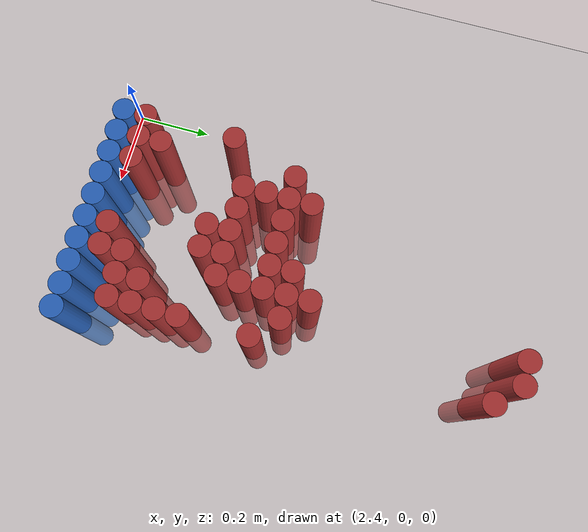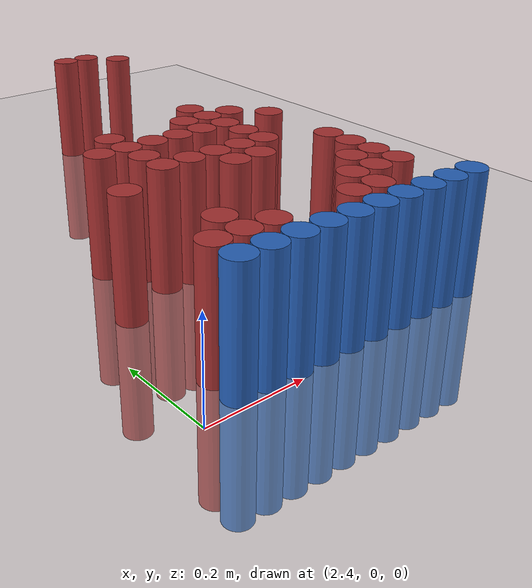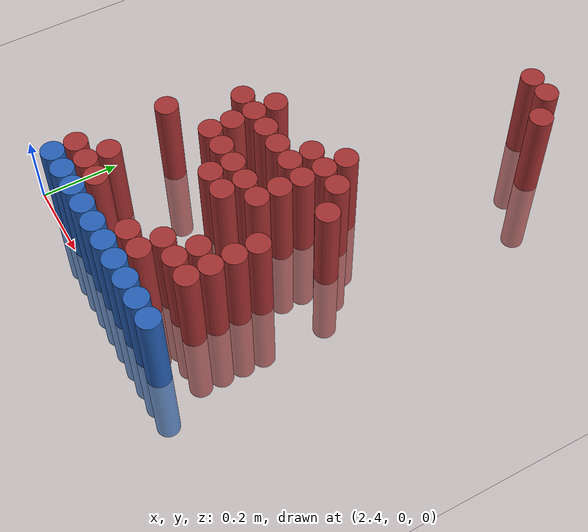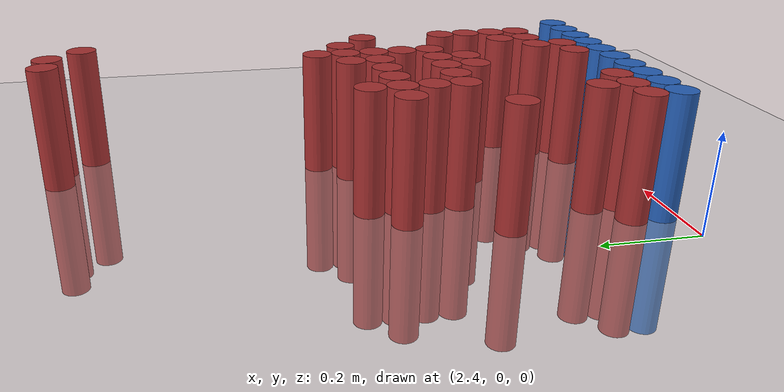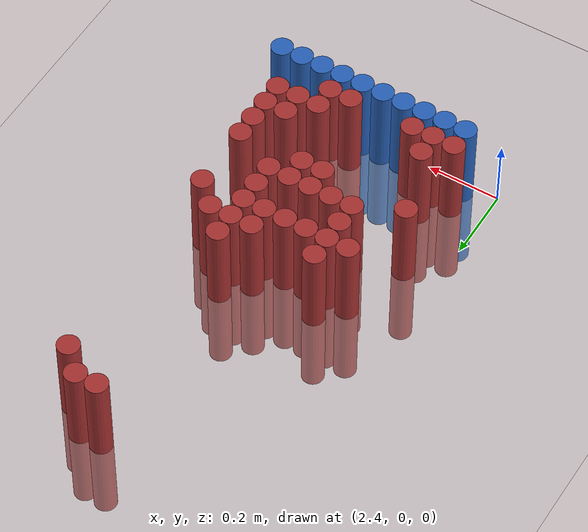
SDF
<sdf version="1.6">
 <world name="default">
  <model name="ground_plane">
   <static>1</static>
   <link name="link">
    <collision name="collision">
     <geometry><plane><normal>0 0 1</normal><size>100 100</size></plane></geometry>
     <surface><friction><ode><mu>100</mu><mu2>50</mu2></ode></friction></surface>
    </collision>
    <visual name="visual">
     <cast_shadows>0</cast_shadows>
     <geometry><plane><normal>0 0 1</normal><size>100 100</size></plane></geometry>
     <material>
      <script><uri>file://media/materials/scripts/gazebo.material</uri><name>Gazebo/Grey</name></script>
     </material>
    </visual>
   </link>
  </model>
  <model name="unit_cylinder_211">
   <static>1</static>
   <pose>2.850000 1.170000 0.000000 0.000000 0.000000 0.000000</pose>
   <link name="link">
    <inertial>
     <mass>1</mass>
     <inertia><ixx>0.145833</ixx><ixy>0</ixy><ixz>0</ixz><iyy>0.145833</iyy><iyz>0</iyz><izz>0.125</izz></inertia>
    </inertial>
    <collision name="collision">
     <geometry><cylinder><radius>0.030000</radius><length>0.5</length></cylinder></geometry>
    </collision>
    <visual name="visual">
     <geometry><cylinder><radius>0.030000</radius><length>0.5</length></cylinder></geometry>
     <material>
      <ambient>0.648000 0.192000 0.192000 1</ambient>
      <diffuse>0.648000 0.192000 0.192000 1</diffuse>
     </material>
     <material>
      <script><name>Gazebo/Grey</name><uri>file://media/materials/scripts/gazebo.material</uri></script>
     </material>
    </visual>
   </link>
  </model>
  <model name="unit_cylinder_212">
   <static>1</static>
   <pose>2.910000 1.170000 0.000000 0.000000 0.000000 0.000000</pose>
   <link name="link">
    <inertial>
     <mass>1</mass>
     <inertia><ixx>0.145833</ixx><ixy>0</ixy><ixz>0</ixz><iyy>0.145833</iyy><iyz>0</iyz><izz>0.125</izz></inertia>
    </inertial>
    <collision name="collision">
     <geometry><cylinder><radius>0.030000</radius><length>0.5</length></cylinder></geometry>
    </collision>
    <visual name="visual">
     <geometry><cylinder><radius>0.030000</radius><length>0.5</length></cylinder></geometry>
     <material>
      <ambient>0.648000 0.192000 0.192000 1</ambient>
      <diffuse>0.648000 0.192000 0.192000 1</diffuse>
     </material>
     <material>
      <script><name>Gazebo/Grey</name><uri>file://media/materials/scripts/gazebo.material</uri></script>
     </material>
    </visual>
   </link>
  </model>
  <model name="unit_cylinder_224">
   <static>1</static>
   <pose>2.970000 1.110000 0.000000 0.000000 0.000000 0.000000</pose>
   <link name="link">
    <inertial>
     <mass>1</mass>
     <inertia><ixx>0.145833</ixx><ixy>0</ixy><ixz>0</ixz><iyy>0.145833</iyy><iyz>0</iyz><izz>0.125</izz></inertia>
    </inertial>
    <collision name="collision">
     <geometry><cylinder><radius>0.030000</radius><length>0.5</length></cylinder></geometry>
    </collision>
    <visual name="visual">
     <geometry><cylinder><radius>0.030000</radius><length>0.5</length></cylinder></geometry>
     <material>
      <ambient>0.648000 0.192000 0.192000 1</ambient>
      <diffuse>0.648000 0.192000 0.192000 1</diffuse>
     </material>
     <material>
      <script><name>Gazebo/Grey</name><uri>file://media/materials/scripts/gazebo.material</uri></script>
     </material>
    </visual>
   </link>
  </model>
  <model name="unit_cylinder_230">
   <static>1</static>
   <pose>2.850000 0.630000 0.000000 0.000000 0.000000 0.000000</pose>
   <link name="link">
    <inertial>
     <mass>1</mass>
     <inertia><ixx>0.145833</ixx><ixy>0</ixy><ixz>0</ixz><iyy>0.145833</iyy><iyz>0</iyz><izz>0.125</izz></inertia>
    </inertial>
    <collision name="collision">
     <geometry><cylinder><radius>0.030000</radius><length>0.5</length></cylinder></geometry>
    </collision>
    <visual name="visual">
     <geometry><cylinder><radius>0.030000</radius><length>0.5</length></cylinder></geometry>
     <material>
      <ambient>0.648000 0.192000 0.192000 1</ambient>
      <diffuse>0.648000 0.192000 0.192000 1</diffuse>
     </material>
     <material>
      <script><name>Gazebo/Grey</name><uri>file://media/materials/scripts/gazebo.material</uri></script>
     </material>
    </visual>
   </link>
  </model>
  <model name="unit_cylinder_234">
   <static>1</static>
   <pose>2.610000 0.570000 0.000000 0.000000 0.000000 0.000000</pose>
   <link name="link">
    <inertial>
     <mass>1</mass>
     <inertia><ixx>0.145833</ixx><ixy>0</ixy><ixz>0</ixz><iyy>0.145833</iyy><iyz>0</iyz><izz>0.125</izz></inertia>
    </inertial>
    <collision name="collision">
     <geometry><cylinder><radius>0.030000</radius><length>0.5</length></cylinder></geometry>
    </collision>
    <visual name="visual">
     <geometry><cylinder><radius>0.030000</radius><length>0.5</length></cylinder></geometry>
     <material>
      <ambient>0.648000 0.192000 0.192000 1</ambient>
      <diffuse>0.648000 0.192000 0.192000 1</diffuse>
     </material>
     <material>
      <script><name>Gazebo/Grey</name><uri>file://media/materials/scripts/gazebo.material</uri></script>
     </material>
    </visual>
   </link>
  </model>
  <model name="unit_cylinder_235">
   <static>1</static>
   <pose>2.790000 0.570000 0.000000 0.000000 0.000000 0.000000</pose>
   <link name="link">
    <inertial>
     <mass>1</mass>
     <inertia><ixx>0.145833</ixx><ixy>0</ixy><ixz>0</ixz><iyy>0.145833</iyy><iyz>0</iyz><izz>0.125</izz></inertia>
    </inertial>
    <collision name="collision">
     <geometry><cylinder><radius>0.030000</radius><length>0.5</length></cylinder></geometry>
    </collision>
    <visual name="visual">
     <geometry><cylinder><radius>0.030000</radius><length>0.5</length></cylinder></geometry>
     <material>
      <ambient>0.648000 0.192000 0.192000 1</ambient>
      <diffuse>0.648000 0.192000 0.192000 1</diffuse>
     </material>
     <material>
      <script><name>Gazebo/Grey</name><uri>file://media/materials/scripts/gazebo.material</uri></script>
     </material>
    </visual>
   </link>
  </model>
  <model name="unit_cylinder_236">
   <static>1</static>
   <pose>2.850000 0.570000 0.000000 0.000000 0.000000 0.000000</pose>
   <link name="link">
    <inertial>
     <mass>1</mass>
     <inertia><ixx>0.145833</ixx><ixy>0</ixy><ixz>0</ixz><iyy>0.145833</iyy><iyz>0</iyz><izz>0.125</izz></inertia>
    </inertial>
    <collision name="collision">
     <geometry><cylinder><radius>0.030000</radius><length>0.5</length></cylinder></geometry>
    </collision>
    <visual name="visual">
     <geometry><cylinder><radius>0.030000</radius><length>0.5</length></cylinder></geometry>
     <material>
      <ambient>0.648000 0.192000 0.192000 1</ambient>
      <diffuse>0.648000 0.192000 0.192000 1</diffuse>
     </material>
     <material>
      <script><name>Gazebo/Grey</name><uri>file://media/materials/scripts/gazebo.material</uri></script>
     </material>
    </visual>
   </link>
  </model>
  <model name="unit_cylinder_237">
   <static>1</static>
   <pose>2.910000 0.570000 0.000000 0.000000 0.000000 0.000000</pose>
   <link name="link">
    <inertial>
     <mass>1</mass>
     <inertia><ixx>0.145833</ixx><ixy>0</ixy><ixz>0</ixz><iyy>0.145833</iyy><iyz>0</iyz><izz>0.125</izz></inertia>
    </inertial>
    <collision name="collision">
     <geometry><cylinder><radius>0.030000</radius><length>0.5</length></cylinder></geometry>
    </collision>
    <visual name="visual">
     <geometry><cylinder><radius>0.030000</radius><length>0.5</length></cylinder></geometry>
     <material>
      <ambient>0.648000 0.192000 0.192000 1</ambient>
      <diffuse>0.648000 0.192000 0.192000 1</diffuse>
     </material>
     <material>
      <script><name>Gazebo/Grey</name><uri>file://media/materials/scripts/gazebo.material</uri></script>
     </material>
    </visual>
   </link>
  </model>
  <model name="unit_cylinder_242">
   <static>1</static>
   <pose>2.550000 0.510000 0.000000 0.000000 0.000000 0.000000</pose>
   <link name="link">
    <inertial>
     <mass>1</mass>
     <inertia><ixx>0.145833</ixx><ixy>0</ixy><ixz>0</ixz><iyy>0.145833</iyy><iyz>0</iyz><izz>0.125</izz></inertia>
    </inertial>
    <collision name="collision">
     <geometry><cylinder><radius>0.030000</radius><length>0.5</length></cylinder></geometry>
    </collision>
    <visual name="visual">
     <geometry><cylinder><radius>0.030000</radius><length>0.5</length></cylinder></geometry>
     <material>
      <ambient>0.648000 0.192000 0.192000 1</ambient>
      <diffuse>0.648000 0.192000 0.192000 1</diffuse>
     </material>
     <material>
      <script><name>Gazebo/Grey</name><uri>file://media/materials/scripts/gazebo.material</uri></script>
     </material>
    </visual>
   </link>
  </model>
  <model name="unit_cylinder_243">
   <static>1</static>
   <pose>2.610000 0.510000 0.000000 0.000000 0.000000 0.000000</pose>
   <link name="link">
    <inertial>
     <mass>1</mass>
     <inertia><ixx>0.145833</ixx><ixy>0</ixy><ixz>0</ixz><iyy>0.145833</iyy><iyz>0</iyz><izz>0.125</izz></inertia>
    </inertial>
    <collision name="collision">
     <geometry><cylinder><radius>0.030000</radius><length>0.5</length></cylinder></geometry>
    </collision>
    <visual name="visual">
     <geometry><cylinder><radius>0.030000</radius><length>0.5</length></cylinder></geometry>
     <material>
      <ambient>0.648000 0.192000 0.192000 1</ambient>
      <diffuse>0.648000 0.192000 0.192000 1</diffuse>
     </material>
     <material>
      <script><name>Gazebo/Grey</name><uri>file://media/materials/scripts/gazebo.material</uri></script>
     </material>
    </visual>
   </link>
  </model>
  <model name="unit_cylinder_244">
   <static>1</static>
   <pose>2.670000 0.510000 0.000000 0.000000 0.000000 0.000000</pose>
   <link name="link">
    <inertial>
     <mass>1</mass>
     <inertia><ixx>0.145833</ixx><ixy>0</ixy><ixz>0</ixz><iyy>0.145833</iyy><iyz>0</iyz><izz>0.125</izz></inertia>
    </inertial>
    <collision name="collision">
     <geometry><cylinder><radius>0.030000</radius><length>0.5</length></cylinder></geometry>
    </collision>
    <visual name="visual">
     <geometry><cylinder><radius>0.030000</radius><length>0.5</length></cylinder></geometry>
     <material>
      <ambient>0.648000 0.192000 0.192000 1</ambient>
      <diffuse>0.648000 0.192000 0.192000 1</diffuse>
     </material>
     <material>
      <script><name>Gazebo/Grey</name><uri>file://media/materials/scripts/gazebo.material</uri></script>
     </material>
    </visual>
   </link>
  </model>
  <model name="unit_cylinder_245">
   <static>1</static>
   <pose>2.730000 0.510000 0.000000 0.000000 0.000000 0.000000</pose>
   <link name="link">
    <inertial>
     <mass>1</mass>
     <inertia><ixx>0.145833</ixx><ixy>0</ixy><ixz>0</ixz><iyy>0.145833</iyy><iyz>0</iyz><izz>0.125</izz></inertia>
    </inertial>
    <collision name="collision">
     <geometry><cylinder><radius>0.030000</radius><length>0.5</length></cylinder></geometry>
    </collision>
    <visual name="visual">
     <geometry><cylinder><radius>0.030000</radius><length>0.5</length></cylinder></geometry>
     <material>
      <ambient>0.648000 0.192000 0.192000 1</ambient>
      <diffuse>0.648000 0.192000 0.192000 1</diffuse>
     </material>
     <material>
      <script><name>Gazebo/Grey</name><uri>file://media/materials/scripts/gazebo.material</uri></script>
     </material>
    </visual>
   </link>
  </model>
  <model name="unit_cylinder_246">
   <static>1</static>
   <pose>2.790000 0.510000 0.000000 0.000000 0.000000 0.000000</pose>
   <link name="link">
    <inertial>
     <mass>1</mass>
     <inertia><ixx>0.145833</ixx><ixy>0</ixy><ixz>0</ixz><iyy>0.145833</iyy><iyz>0</iyz><izz>0.125</izz></inertia>
    </inertial>
    <collision name="collision">
     <geometry><cylinder><radius>0.030000</radius><length>0.5</length></cylinder></geometry>
    </collision>
    <visual name="visual">
     <geometry><cylinder><radius>0.030000</radius><length>0.5</length></cylinder></geometry>
     <material>
      <ambient>0.648000 0.192000 0.192000 1</ambient>
      <diffuse>0.648000 0.192000 0.192000 1</diffuse>
     </material>
     <material>
      <script><name>Gazebo/Grey</name><uri>file://media/materials/scripts/gazebo.material</uri></script>
     </material>
    </visual>
   </link>
  </model>
  <model name="unit_cylinder_247">
   <static>1</static>
   <pose>2.850000 0.510000 0.000000 0.000000 0.000000 0.000000</pose>
   <link name="link">
    <inertial>
     <mass>1</mass>
     <inertia><ixx>0.145833</ixx><ixy>0</ixy><ixz>0</ixz><iyy>0.145833</iyy><iyz>0</iyz><izz>0.125</izz></inertia>
    </inertial>
    <collision name="collision">
     <geometry><cylinder><radius>0.030000</radius><length>0.5</length></cylinder></geometry>
    </collision>
    <visual name="visual">
     <geometry><cylinder><radius>0.030000</radius><length>0.5</length></cylinder></geometry>
     <material>
      <ambient>0.648000 0.192000 0.192000 1</ambient>
      <diffuse>0.648000 0.192000 0.192000 1</diffuse>
     </material>
     <material>
      <script><name>Gazebo/Grey</name><uri>file://media/materials/scripts/gazebo.material</uri></script>
     </material>
    </visual>
   </link>
  </model>
  <model name="unit_cylinder_248">
   <static>1</static>
   <pose>2.970000 0.510000 0.000000 0.000000 0.000000 0.000000</pose>
   <link name="link">
    <inertial>
     <mass>1</mass>
     <inertia><ixx>0.145833</ixx><ixy>0</ixy><ixz>0</ixz><iyy>0.145833</iyy><iyz>0</iyz><izz>0.125</izz></inertia>
    </inertial>
    <collision name="collision">
     <geometry><cylinder><radius>0.030000</radius><length>0.5</length></cylinder></geometry>
    </collision>
    <visual name="visual">
     <geometry><cylinder><radius>0.030000</radius><length>0.5</length></cylinder></geometry>
     <material>
      <ambient>0.648000 0.192000 0.192000 1</ambient>
      <diffuse>0.648000 0.192000 0.192000 1</diffuse>
     </material>
     <material>
      <script><name>Gazebo/Grey</name><uri>file://media/materials/scripts/gazebo.material</uri></script>
     </material>
    </visual>
   </link>
  </model>
  <model name="unit_cylinder_251">
   <static>1</static>
   <pose>2.610000 0.450000 0.000000 0.000000 0.000000 0.000000</pose>
   <link name="link">
    <inertial>
     <mass>1</mass>
     <inertia><ixx>0.145833</ixx><ixy>0</ixy><ixz>0</ixz><iyy>0.145833</iyy><iyz>0</iyz><izz>0.125</izz></inertia>
    </inertial>
    <collision name="collision">
     <geometry><cylinder><radius>0.030000</radius><length>0.5</length></cylinder></geometry>
    </collision>
    <visual name="visual">
     <geometry><cylinder><radius>0.030000</radius><length>0.5</length></cylinder></geometry>
     <material>
      <ambient>0.648000 0.192000 0.192000 1</ambient>
      <diffuse>0.648000 0.192000 0.192000 1</diffuse>
     </material>
     <material>
      <script><name>Gazebo/Grey</name><uri>file://media/materials/scripts/gazebo.material</uri></script>
     </material>
    </visual>
   </link>
  </model>
  <model name="unit_cylinder_252">
   <static>1</static>
   <pose>2.850000 0.450000 0.000000 0.000000 0.000000 0.000000</pose>
   <link name="link">
    <inertial>
     <mass>1</mass>
     <inertia><ixx>0.145833</ixx><ixy>0</ixy><ixz>0</ixz><iyy>0.145833</iyy><iyz>0</iyz><izz>0.125</izz></inertia>
    </inertial>
    <collision name="collision">
     <geometry><cylinder><radius>0.030000</radius><length>0.5</length></cylinder></geometry>
    </collision>
    <visual name="visual">
     <geometry><cylinder><radius>0.030000</radius><length>0.5</length></cylinder></geometry>
     <material>
      <ambient>0.648000 0.192000 0.192000 1</ambient>
      <diffuse>0.648000 0.192000 0.192000 1</diffuse>
     </material>
     <material>
      <script><name>Gazebo/Grey</name><uri>file://media/materials/scripts/gazebo.material</uri></script>
     </material>
    </visual>
   </link>
  </model>
  <model name="unit_cylinder_255">
   <static>1</static>
   <pose>2.610000 0.390000 0.000000 0.000000 0.000000 0.000000</pose>
   <link name="link">
    <inertial>
     <mass>1</mass>
     <inertia><ixx>0.145833</ixx><ixy>0</ixy><ixz>0</ixz><iyy>0.145833</iyy><iyz>0</iyz><izz>0.125</izz></inertia>
    </inertial>
    <collision name="collision">
     <geometry><cylinder><radius>0.030000</radius><length>0.5</length></cylinder></geometry>
    </collision>
    <visual name="visual">
     <geometry><cylinder><radius>0.030000</radius><length>0.5</length></cylinder></geometry>
     <material>
      <ambient>0.648000 0.192000 0.192000 1</ambient>
      <diffuse>0.648000 0.192000 0.192000 1</diffuse>
     </material>
     <material>
      <script><name>Gazebo/Grey</name><uri>file://media/materials/scripts/gazebo.material</uri></script>
     </material>
    </visual>
   </link>
  </model>
  <model name="unit_cylinder_256">
   <static>1</static>
   <pose>2.670000 0.390000 0.000000 0.000000 0.000000 0.000000</pose>
   <link name="link">
    <inertial>
     <mass>1</mass>
     <inertia><ixx>0.145833</ixx><ixy>0</ixy><ixz>0</ixz><iyy>0.145833</iyy><iyz>0</iyz><izz>0.125</izz></inertia>
    </inertial>
    <collision name="collision">
     <geometry><cylinder><radius>0.030000</radius><length>0.5</length></cylinder></geometry>
    </collision>
    <visual name="visual">
     <geometry><cylinder><radius>0.030000</radius><length>0.5</length></cylinder></geometry>
     <material>
      <ambient>0.648000 0.192000 0.192000 1</ambient>
      <diffuse>0.648000 0.192000 0.192000 1</diffuse>
     </material>
     <material>
      <script><name>Gazebo/Grey</name><uri>file://media/materials/scripts/gazebo.material</uri></script>
     </material>
    </visual>
   </link>
  </model>
  <model name="unit_cylinder_257">
   <static>1</static>
   <pose>2.730000 0.390000 0.000000 0.000000 0.000000 0.000000</pose>
   <link name="link">
    <inertial>
     <mass>1</mass>
     <inertia><ixx>0.145833</ixx><ixy>0</ixy><ixz>0</ixz><iyy>0.145833</iyy><iyz>0</iyz><izz>0.125</izz></inertia>
    </inertial>
    <collision name="collision">
     <geometry><cylinder><radius>0.030000</radius><length>0.5</length></cylinder></geometry>
    </collision>
    <visual name="visual">
     <geometry><cylinder><radius>0.030000</radius><length>0.5</length></cylinder></geometry>
     <material>
      <ambient>0.648000 0.192000 0.192000 1</ambient>
      <diffuse>0.648000 0.192000 0.192000 1</diffuse>
     </material>
     <material>
      <script><name>Gazebo/Grey</name><uri>file://media/materials/scripts/gazebo.material</uri></script>
     </material>
    </visual>
   </link>
  </model>
  <model name="unit_cylinder_258">
   <static>1</static>
   <pose>2.790000 0.390000 0.000000 0.000000 0.000000 0.000000</pose>
   <link name="link">
    <inertial>
     <mass>1</mass>
     <inertia><ixx>0.145833</ixx><ixy>0</ixy><ixz>0</ixz><iyy>0.145833</iyy><iyz>0</iyz><izz>0.125</izz></inertia>
    </inertial>
    <collision name="collision">
     <geometry><cylinder><radius>0.030000</radius><length>0.5</length></cylinder></geometry>
    </collision>
    <visual name="visual">
     <geometry><cylinder><radius>0.030000</radius><length>0.5</length></cylinder></geometry>
     <material>
      <ambient>0.648000 0.192000 0.192000 1</ambient>
      <diffuse>0.648000 0.192000 0.192000 1</diffuse>
     </material>
     <material>
      <script><name>Gazebo/Grey</name><uri>file://media/materials/scripts/gazebo.material</uri></script>
     </material>
    </visual>
   </link>
  </model>
  <model name="unit_cylinder_259">
   <static>1</static>
   <pose>2.850000 0.390000 0.000000 0.000000 0.000000 0.000000</pose>
   <link name="link">
    <inertial>
     <mass>1</mass>
     <inertia><ixx>0.145833</ixx><ixy>0</ixy><ixz>0</ixz><iyy>0.145833</iyy><iyz>0</iyz><izz>0.125</izz></inertia>
    </inertial>
    <collision name="collision">
     <geometry><cylinder><radius>0.030000</radius><length>0.5</length></cylinder></geometry>
    </collision>
    <visual name="visual">
     <geometry><cylinder><radius>0.030000</radius><length>0.5</length></cylinder></geometry>
     <material>
      <ambient>0.648000 0.192000 0.192000 1</ambient>
      <diffuse>0.648000 0.192000 0.192000 1</diffuse>
     </material>
     <material>
      <script><name>Gazebo/Grey</name><uri>file://media/materials/scripts/gazebo.material</uri></script>
     </material>
    </visual>
   </link>
  </model>
  <model name="unit_cylinder_265">
   <static>1</static>
   <pose>2.490000 0.330000 0.000000 0.000000 0.000000 0.000000</pose>
   <link name="link">
    <inertial>
     <mass>1</mass>
     <inertia><ixx>0.145833</ixx><ixy>0</ixy><ixz>0</ixz><iyy>0.145833</iyy><iyz>0</iyz><izz>0.125</izz></inertia>
    </inertial>
    <collision name="collision">
     <geometry><cylinder><radius>0.030000</radius><length>0.5</length></cylinder></geometry>
    </collision>
    <visual name="visual">
     <geometry><cylinder><radius>0.030000</radius><length>0.5</length></cylinder></geometry>
     <material>
      <ambient>0.648000 0.192000 0.192000 1</ambient>
      <diffuse>0.648000 0.192000 0.192000 1</diffuse>
     </material>
     <material>
      <script><name>Gazebo/Grey</name><uri>file://media/materials/scripts/gazebo.material</uri></script>
     </material>
    </visual>
   </link>
  </model>
  <model name="unit_cylinder_266">
   <static>1</static>
   <pose>2.730000 0.330000 0.000000 0.000000 0.000000 0.000000</pose>
   <link name="link">
    <inertial>
     <mass>1</mass>
     <inertia><ixx>0.145833</ixx><ixy>0</ixy><ixz>0</ixz><iyy>0.145833</iyy><iyz>0</iyz><izz>0.125</izz></inertia>
    </inertial>
    <collision name="collision">
     <geometry><cylinder><radius>0.030000</radius><length>0.5</length></cylinder></geometry>
    </collision>
    <visual name="visual">
     <geometry><cylinder><radius>0.030000</radius><length>0.5</length></cylinder></geometry>
     <material>
      <ambient>0.648000 0.192000 0.192000 1</ambient>
      <diffuse>0.648000 0.192000 0.192000 1</diffuse>
     </material>
     <material>
      <script><name>Gazebo/Grey</name><uri>file://media/materials/scripts/gazebo.material</uri></script>
     </material>
    </visual>
   </link>
  </model>
  <model name="unit_cylinder_267">
   <static>1</static>
   <pose>2.790000 0.330000 0.000000 0.000000 0.000000 0.000000</pose>
   <link name="link">
    <inertial>
     <mass>1</mass>
     <inertia><ixx>0.145833</ixx><ixy>0</ixy><ixz>0</ixz><iyy>0.145833</iyy><iyz>0</iyz><izz>0.125</izz></inertia>
    </inertial>
    <collision name="collision">
     <geometry><cylinder><radius>0.030000</radius><length>0.5</length></cylinder></geometry>
    </collision>
    <visual name="visual">
     <geometry><cylinder><radius>0.030000</radius><length>0.5</length></cylinder></geometry>
     <material>
      <ambient>0.648000 0.192000 0.192000 1</ambient>
      <diffuse>0.648000 0.192000 0.192000 1</diffuse>
     </material>
     <material>
      <script><name>Gazebo/Grey</name><uri>file://media/materials/scripts/gazebo.material</uri></script>
     </material>
    </visual>
   </link>
  </model>
  <model name="unit_cylinder_268">
   <static>1</static>
   <pose>2.970000 0.330000 0.000000 0.000000 0.000000 0.000000</pose>
   <link name="link">
    <inertial>
     <mass>1</mass>
     <inertia><ixx>0.145833</ixx><ixy>0</ixy><ixz>0</ixz><iyy>0.145833</iyy><iyz>0</iyz><izz>0.125</izz></inertia>
    </inertial>
    <collision name="collision">
     <geometry><cylinder><radius>0.030000</radius><length>0.5</length></cylinder></geometry>
    </collision>
    <visual name="visual">
     <geometry><cylinder><radius>0.030000</radius><length>0.5</length></cylinder></geometry>
     <material>
      <ambient>0.648000 0.192000 0.192000 1</ambient>
      <diffuse>0.648000 0.192000 0.192000 1</diffuse>
     </material>
     <material>
      <script><name>Gazebo/Grey</name><uri>file://media/materials/scripts/gazebo.material</uri></script>
     </material>
    </visual>
   </link>
  </model>
  <model name="unit_cylinder_274">
   <static>1</static>
   <pose>2.970000 0.270000 0.000000 0.000000 0.000000 0.000000</pose>
   <link name="link">
    <inertial>
     <mass>1</mass>
     <inertia><ixx>0.145833</ixx><ixy>0</ixy><ixz>0</ixz><iyy>0.145833</iyy><iyz>0</iyz><izz>0.125</izz></inertia>
    </inertial>
    <collision name="collision">
     <geometry><cylinder><radius>0.030000</radius><length>0.5</length></cylinder></geometry>
    </collision>
    <visual name="visual">
     <geometry><cylinder><radius>0.030000</radius><length>0.5</length></cylinder></geometry>
     <material>
      <ambient>0.648000 0.192000 0.192000 1</ambient>
      <diffuse>0.648000 0.192000 0.192000 1</diffuse>
     </material>
     <material>
      <script><name>Gazebo/Grey</name><uri>file://media/materials/scripts/gazebo.material</uri></script>
     </material>
    </visual>
   </link>
  </model>
  <model name="unit_cylinder_277">
   <static>1</static>
   <pose>2.910000 0.210000 0.000000 0.000000 0.000000 0.000000</pose>
   <link name="link">
    <inertial>
     <mass>1</mass>
     <inertia><ixx>0.145833</ixx><ixy>0</ixy><ixz>0</ixz><iyy>0.145833</iyy><iyz>0</iyz><izz>0.125</izz></inertia>
    </inertial>
    <collision name="collision">
     <geometry><cylinder><radius>0.030000</radius><length>0.5</length></cylinder></geometry>
    </collision>
    <visual name="visual">
     <geometry><cylinder><radius>0.030000</radius><length>0.5</length></cylinder></geometry>
     <material>
      <ambient>0.648000 0.192000 0.192000 1</ambient>
      <diffuse>0.648000 0.192000 0.192000 1</diffuse>
     </material>
     <material>
      <script><name>Gazebo/Grey</name><uri>file://media/materials/scripts/gazebo.material</uri></script>
     </material>
    </visual>
   </link>
  </model>
  <model name="unit_cylinder_278">
   <static>1</static>
   <pose>2.970000 0.210000 0.000000 0.000000 0.000000 0.000000</pose>
   <link name="link">
    <inertial>
     <mass>1</mass>
     <inertia><ixx>0.145833</ixx><ixy>0</ixy><ixz>0</ixz><iyy>0.145833</iyy><iyz>0</iyz><izz>0.125</izz></inertia>
    </inertial>
    <collision name="collision">
     <geometry><cylinder><radius>0.030000</radius><length>0.5</length></cylinder></geometry>
    </collision>
    <visual name="visual">
     <geometry><cylinder><radius>0.030000</radius><length>0.5</length></cylinder></geometry>
     <material>
      <ambient>0.648000 0.192000 0.192000 1</ambient>
      <diffuse>0.648000 0.192000 0.192000 1</diffuse>
     </material>
     <material>
      <script><name>Gazebo/Grey</name><uri>file://media/materials/scripts/gazebo.material</uri></script>
     </material>
    </visual>
   </link>
  </model>
  <model name="unit_cylinder_280">
   <static>1</static>
   <pose>2.550000 0.150000 0.000000 0.000000 0.000000 0.000000</pose>
   <link name="link">
    <inertial>
     <mass>1</mass>
     <inertia><ixx>0.145833</ixx><ixy>0</ixy><ixz>0</ixz><iyy>0.145833</iyy><iyz>0</iyz><izz>0.125</izz></inertia>
    </inertial>
    <collision name="collision">
     <geometry><cylinder><radius>0.030000</radius><length>0.5</length></cylinder></geometry>
    </collision>
    <visual name="visual">
     <geometry><cylinder><radius>0.030000</radius><length>0.5</length></cylinder></geometry>
     <material>
      <ambient>0.648000 0.192000 0.192000 1</ambient>
      <diffuse>0.648000 0.192000 0.192000 1</diffuse>
     </material>
     <material>
      <script><name>Gazebo/Grey</name><uri>file://media/materials/scripts/gazebo.material</uri></script>
     </material>
    </visual>
   </link>
  </model>
  <model name="unit_cylinder_281">
   <static>1</static>
   <pose>2.850000 0.150000 0.000000 0.000000 0.000000 0.000000</pose>
   <link name="link">
    <inertial>
     <mass>1</mass>
     <inertia><ixx>0.145833</ixx><ixy>0</ixy><ixz>0</ixz><iyy>0.145833</iyy><iyz>0</iyz><izz>0.125</izz></inertia>
    </inertial>
    <collision name="collision">
     <geometry><cylinder><radius>0.030000</radius><length>0.5</length></cylinder></geometry>
    </collision>
    <visual name="visual">
     <geometry><cylinder><radius>0.030000</radius><length>0.5</length></cylinder></geometry>
     <material>
      <ambient>0.648000 0.192000 0.192000 1</ambient>
      <diffuse>0.648000 0.192000 0.192000 1</diffuse>
     </material>
     <material>
      <script><name>Gazebo/Grey</name><uri>file://media/materials/scripts/gazebo.material</uri></script>
     </material>
    </visual>
   </link>
  </model>
  <model name="unit_cylinder_282">
   <static>1</static>
   <pose>2.910000 0.150000 0.000000 0.000000 0.000000 0.000000</pose>
   <link name="link">
    <inertial>
     <mass>1</mass>
     <inertia><ixx>0.145833</ixx><ixy>0</ixy><ixz>0</ixz><iyy>0.145833</iyy><iyz>0</iyz><izz>0.125</izz></inertia>
    </inertial>
    <collision name="collision">
     <geometry><cylinder><radius>0.030000</radius><length>0.5</length></cylinder></geometry>
    </collision>
    <visual name="visual">
     <geometry><cylinder><radius>0.030000</radius><length>0.5</length></cylinder></geometry>
     <material>
      <ambient>0.648000 0.192000 0.192000 1</ambient>
      <diffuse>0.648000 0.192000 0.192000 1</diffuse>
     </material>
     <material>
      <script><name>Gazebo/Grey</name><uri>file://media/materials/scripts/gazebo.material</uri></script>
     </material>
    </visual>
   </link>
  </model>
  <model name="unit_cylinder_283">
   <static>1</static>
   <pose>2.970000 0.150000 0.000000 0.000000 0.000000 0.000000</pose>
   <link name="link">
    <inertial>
     <mass>1</mass>
     <inertia><ixx>0.145833</ixx><ixy>0</ixy><ixz>0</ixz><iyy>0.145833</iyy><iyz>0</iyz><izz>0.125</izz></inertia>
    </inertial>
    <collision name="collision">
     <geometry><cylinder><radius>0.030000</radius><length>0.5</length></cylinder></geometry>
    </collision>
    <visual name="visual">
     <geometry><cylinder><radius>0.030000</radius><length>0.5</length></cylinder></geometry>
     <material>
      <ambient>0.648000 0.192000 0.192000 1</ambient>
      <diffuse>0.648000 0.192000 0.192000 1</diffuse>
     </material>
     <material>
      <script><name>Gazebo/Grey</name><uri>file://media/materials/scripts/gazebo.material</uri></script>
     </material>
    </visual>
   </link>
  </model>
  <model name="unit_cylinder_291">
   <static>1</static>
   <pose>2.490000 0.090000 0.000000 0.000000 0.000000 0.000000</pose>
   <link name="link">
    <inertial>
     <mass>1</mass>
     <inertia><ixx>0.145833</ixx><ixy>0</ixy><ixz>0</ixz><iyy>0.145833</iyy><iyz>0</iyz><izz>0.125</izz></inertia>
    </inertial>
    <collision name="collision">
     <geometry><cylinder><radius>0.030000</radius><length>0.5</length></cylinder></geometry>
    </collision>
    <visual name="visual">
     <geometry><cylinder><radius>0.030000</radius><length>0.5</length></cylinder></geometry>
     <material>
      <ambient>0.648000 0.192000 0.192000 1</ambient>
      <diffuse>0.648000 0.192000 0.192000 1</diffuse>
     </material>
     <material>
      <script><name>Gazebo/Grey</name><uri>file://media/materials/scripts/gazebo.material</uri></script>
     </material>
    </visual>
   </link>
  </model>
  <model name="unit_cylinder_292">
   <static>1</static>
   <pose>2.550000 0.090000 0.000000 0.000000 0.000000 0.000000</pose>
   <link name="link">
    <inertial>
     <mass>1</mass>
     <inertia><ixx>0.145833</ixx><ixy>0</ixy><ixz>0</ixz><iyy>0.145833</iyy><iyz>0</iyz><izz>0.125</izz></inertia>
    </inertial>
    <collision name="collision">
     <geometry><cylinder><radius>0.030000</radius><length>0.5</length></cylinder></geometry>
    </collision>
    <visual name="visual">
     <geometry><cylinder><radius>0.030000</radius><length>0.5</length></cylinder></geometry>
     <material>
      <ambient>0.648000 0.192000 0.192000 1</ambient>
      <diffuse>0.648000 0.192000 0.192000 1</diffuse>
     </material>
     <material>
      <script><name>Gazebo/Grey</name><uri>file://media/materials/scripts/gazebo.material</uri></script>
     </material>
    </visual>
   </link>
  </model>
  <model name="unit_cylinder_293">
   <static>1</static>
   <pose>2.610000 0.090000 0.000000 0.000000 0.000000 0.000000</pose>
   <link name="link">
    <inertial>
     <mass>1</mass>
     <inertia><ixx>0.145833</ixx><ixy>0</ixy><ixz>0</ixz><iyy>0.145833</iyy><iyz>0</iyz><izz>0.125</izz></inertia>
    </inertial>
    <collision name="collision">
     <geometry><cylinder><radius>0.030000</radius><length>0.5</length></cylinder></geometry>
    </collision>
    <visual name="visual">
     <geometry><cylinder><radius>0.030000</radius><length>0.5</length></cylinder></geometry>
     <material>
      <ambient>0.648000 0.192000 0.192000 1</ambient>
      <diffuse>0.648000 0.192000 0.192000 1</diffuse>
     </material>
     <material>
      <script><name>Gazebo/Grey</name><uri>file://media/materials/scripts/gazebo.material</uri></script>
     </material>
    </visual>
   </link>
  </model>
  <model name="unit_cylinder_294">
   <static>1</static>
   <pose>2.790000 0.090000 0.000000 0.000000 0.000000 0.000000</pose>
   <link name="link">
    <inertial>
     <mass>1</mass>
     <inertia><ixx>0.145833</ixx><ixy>0</ixy><ixz>0</ixz><iyy>0.145833</iyy><iyz>0</iyz><izz>0.125</izz></inertia>
    </inertial>
    <collision name="collision">
     <geometry><cylinder><radius>0.030000</radius><length>0.5</length></cylinder></geometry>
    </collision>
    <visual name="visual">
     <geometry><cylinder><radius>0.030000</radius><length>0.5</length></cylinder></geometry>
     <material>
      <ambient>0.648000 0.192000 0.192000 1</ambient>
      <diffuse>0.648000 0.192000 0.192000 1</diffuse>
     </material>
     <material>
      <script><name>Gazebo/Grey</name><uri>file://media/materials/scripts/gazebo.material</uri></script>
     </material>
    </visual>
   </link>
  </model>
  <model name="unit_cylinder_295">
   <static>1</static>
   <pose>2.850000 0.090000 0.000000 0.000000 0.000000 0.000000</pose>
   <link name="link">
    <inertial>
     <mass>1</mass>
     <inertia><ixx>0.145833</ixx><ixy>0</ixy><ixz>0</ixz><iyy>0.145833</iyy><iyz>0</iyz><izz>0.125</izz></inertia>
    </inertial>
    <collision name="collision">
     <geometry><cylinder><radius>0.030000</radius><length>0.5</length></cylinder></geometry>
    </collision>
    <visual name="visual">
     <geometry><cylinder><radius>0.030000</radius><length>0.5</length></cylinder></geometry>
     <material>
      <ambient>0.648000 0.192000 0.192000 1</ambient>
      <diffuse>0.648000 0.192000 0.192000 1</diffuse>
     </material>
     <material>
      <script><name>Gazebo/Grey</name><uri>file://media/materials/scripts/gazebo.material</uri></script>
     </material>
    </visual>
   </link>
  </model>
  <model name="unit_cylinder_314">
   <static>1</static>
   <pose>2.490000 0.030000 0.000000 0.000000 0.000000 0.000000</pose>
   <link name="link">
    <inertial>
     <mass>1</mass>
     <inertia><ixx>0.145833</ixx><ixy>0</ixy><ixz>0</ixz><iyy>0.145833</iyy><iyz>0</iyz><izz>0.125</izz></inertia>
    </inertial>
    <collision name="collision">
     <geometry><cylinder><radius>0.030000</radius><length>0.5</length></cylinder></geometry>
    </collision>
    <visual name="visual">
     <geometry><cylinder><radius>0.030000</radius><length>0.5</length></cylinder></geometry>
     <material>
      <ambient>0.152000 0.379000 0.720000 1</ambient>
      <diffuse>0.152000 0.379000 0.720000 1</diffuse>
     </material>
     <material>
      <script><name>Gazebo/Grey</name><uri>file://media/materials/scripts/gazebo.material</uri></script>
     </material>
    </visual>
   </link>
  </model>
  <model name="unit_cylinder_315">
   <static>1</static>
   <pose>2.550000 0.030000 0.000000 0.000000 0.000000 0.000000</pose>
   <link name="link">
    <inertial>
     <mass>1</mass>
     <inertia><ixx>0.145833</ixx><ixy>0</ixy><ixz>0</ixz><iyy>0.145833</iyy><iyz>0</iyz><izz>0.125</izz></inertia>
    </inertial>
    <collision name="collision">
     <geometry><cylinder><radius>0.030000</radius><length>0.5</length></cylinder></geometry>
    </collision>
    <visual name="visual">
     <geometry><cylinder><radius>0.030000</radius><length>0.5</length></cylinder></geometry>
     <material>
      <ambient>0.152000 0.379000 0.720000 1</ambient>
      <diffuse>0.152000 0.379000 0.720000 1</diffuse>
     </material>
     <material>
      <script><name>Gazebo/Grey</name><uri>file://media/materials/scripts/gazebo.material</uri></script>
     </material>
    </visual>
   </link>
  </model>
  <model name="unit_cylinder_316">
   <static>1</static>
   <pose>2.610000 0.030000 0.000000 0.000000 0.000000 0.000000</pose>
   <link name="link">
    <inertial>
     <mass>1</mass>
     <inertia><ixx>0.145833</ixx><ixy>0</ixy><ixz>0</ixz><iyy>0.145833</iyy><iyz>0</iyz><izz>0.125</izz></inertia>
    </inertial>
    <collision name="collision">
     <geometry><cylinder><radius>0.030000</radius><length>0.5</length></cylinder></geometry>
    </collision>
    <visual name="visual">
     <geometry><cylinder><radius>0.030000</radius><length>0.5</length></cylinder></geometry>
     <material>
      <ambient>0.152000 0.379000 0.720000 1</ambient>
      <diffuse>0.152000 0.379000 0.720000 1</diffuse>
     </material>
     <material>
      <script><name>Gazebo/Grey</name><uri>file://media/materials/scripts/gazebo.material</uri></script>
     </material>
    </visual>
   </link>
  </model>
  <model name="unit_cylinder_317">
   <static>1</static>
   <pose>2.670000 0.030000 0.000000 0.000000 0.000000 0.000000</pose>
   <link name="link">
    <inertial>
     <mass>1</mass>
     <inertia><ixx>0.145833</ixx><ixy>0</ixy><ixz>0</ixz><iyy>0.145833</iyy><iyz>0</iyz><izz>0.125</izz></inertia>
    </inertial>
    <collision name="collision">
     <geometry><cylinder><radius>0.030000</radius><length>0.5</length></cylinder></geometry>
    </collision>
    <visual name="visual">
     <geometry><cylinder><radius>0.030000</radius><length>0.5</length></cylinder></geometry>
     <material>
      <ambient>0.152000 0.379000 0.720000 1</ambient>
      <diffuse>0.152000 0.379000 0.720000 1</diffuse>
     </material>
     <material>
      <script><name>Gazebo/Grey</name><uri>file://media/materials/scripts/gazebo.material</uri></script>
     </material>
    </visual>
   </link>
  </model>
  <model name="unit_cylinder_318">
   <static>1</static>
   <pose>2.730000 0.030000 0.000000 0.000000 0.000000 0.000000</pose>
   <link name="link">
    <inertial>
     <mass>1</mass>
     <inertia><ixx>0.145833</ixx><ixy>0</ixy><ixz>0</ixz><iyy>0.145833</iyy><iyz>0</iyz><izz>0.125</izz></inertia>
    </inertial>
    <collision name="collision">
     <geometry><cylinder><radius>0.030000</radius><length>0.5</length></cylinder></geometry>
    </collision>
    <visual name="visual">
     <geometry><cylinder><radius>0.030000</radius><length>0.5</length></cylinder></geometry>
     <material>
      <ambient>0.152000 0.379000 0.720000 1</ambient>
      <diffuse>0.152000 0.379000 0.720000 1</diffuse>
     </material>
     <material>
      <script><name>Gazebo/Grey</name><uri>file://media/materials/scripts/gazebo.material</uri></script>
     </material>
    </visual>
   </link>
  </model>
  <model name="unit_cylinder_319">
   <static>1</static>
   <pose>2.790000 0.030000 0.000000 0.000000 0.000000 0.000000</pose>
   <link name="link">
    <inertial>
     <mass>1</mass>
     <inertia><ixx>0.145833</ixx><ixy>0</ixy><ixz>0</ixz><iyy>0.145833</iyy><iyz>0</iyz><izz>0.125</izz></inertia>
    </inertial>
    <collision name="collision">
     <geometry><cylinder><radius>0.030000</radius><length>0.5</length></cylinder></geometry>
    </collision>
    <visual name="visual">
     <geometry><cylinder><radius>0.030000</radius><length>0.5</length></cylinder></geometry>
     <material>
      <ambient>0.152000 0.379000 0.720000 1</ambient>
      <diffuse>0.152000 0.379000 0.720000 1</diffuse>
     </material>
     <material>
      <script><name>Gazebo/Grey</name><uri>file://media/materials/scripts/gazebo.material</uri></script>
     </material>
    </visual>
   </link>
  </model>
  <model name="unit_cylinder_320">
   <static>1</static>
   <pose>2.850000 0.030000 0.000000 0.000000 0.000000 0.000000</pose>
   <link name="link">
    <inertial>
     <mass>1</mass>
     <inertia><ixx>0.145833</ixx><ixy>0</ixy><ixz>0</ixz><iyy>0.145833</iyy><iyz>0</iyz><izz>0.125</izz></inertia>
    </inertial>
    <collision name="collision">
     <geometry><cylinder><radius>0.030000</radius><length>0.5</length></cylinder></geometry>
    </collision>
    <visual name="visual">
     <geometry><cylinder><radius>0.030000</radius><length>0.5</length></cylinder></geometry>
     <material>
      <ambient>0.152000 0.379000 0.720000 1</ambient>
      <diffuse>0.152000 0.379000 0.720000 1</diffuse>
     </material>
     <material>
      <script><name>Gazebo/Grey</name><uri>file://media/materials/scripts/gazebo.material</uri></script>
     </material>
    </visual>
   </link>
  </model>
  <model name="unit_cylinder_321">
   <static>1</static>
   <pose>2.910000 0.030000 0.000000 0.000000 0.000000 0.000000</pose>
   <link name="link">
    <inertial>
     <mass>1</mass>
     <inertia><ixx>0.145833</ixx><ixy>0</ixy><ixz>0</ixz><iyy>0.145833</iyy><iyz>0</iyz><izz>0.125</izz></inertia>
    </inertial>
    <collision name="collision">
     <geometry><cylinder><radius>0.030000</radius><length>0.5</length></cylinder></geometry>
    </collision>
    <visual name="visual">
     <geometry><cylinder><radius>0.030000</radius><length>0.5</length></cylinder></geometry>
     <material>
      <ambient>0.152000 0.379000 0.720000 1</ambient>
      <diffuse>0.152000 0.379000 0.720000 1</diffuse>
     </material>
     <material>
      <script><name>Gazebo/Grey</name><uri>file://media/materials/scripts/gazebo.material</uri></script>
     </material>
    </visual>
   </link>
  </model>
  <model name="unit_cylinder_322">
   <static>1</static>
   <pose>2.970000 0.030000 0.000000 0.000000 0.000000 0.000000</pose>
   <link name="link">
    <inertial>
     <mass>1</mass>
     <inertia><ixx>0.145833</ixx><ixy>0</ixy><ixz>0</ixz><iyy>0.145833</iyy><iyz>0</iyz><izz>0.125</izz></inertia>
    </inertial>
    <collision name="collision">
     <geometry><cylinder><radius>0.030000</radius><length>0.5</length></cylinder></geometry>
    </collision>
    <visual name="visual">
     <geometry><cylinder><radius>0.030000</radius><length>0.5</length></cylinder></geometry>
     <material>
      <ambient>0.152000 0.379000 0.720000 1</ambient>
      <diffuse>0.152000 0.379000 0.720000 1</diffuse>
     </material>
     <material>
      <script><name>Gazebo/Grey</name><uri>file://media/materials/scripts/gazebo.material</uri></script>
     </material>
    </visual>
   </link>
  </model>
  <model name="unit_cylinder_323">
   <static>1</static>
   <pose>3.030000 0.030000 0.000000 0.000000 0.000000 0.000000</pose>
   <link name="link">
    <inertial>
     <mass>1</mass>
     <inertia><ixx>0.145833</ixx><ixy>0</ixy><ixz>0</ixz><iyy>0.145833</iyy><iyz>0</iyz><izz>0.125</izz></inertia>
    </inertial>
    <collision name="collision">
     <geometry><cylinder><radius>0.030000</radius><length>0.5</length></cylinder></geometry>
    </collision>
    <visual name="visual">
     <geometry><cylinder><radius>0.030000</radius><length>0.5</length></cylinder></geometry>
     <material>
      <ambient>0.152000 0.379000 0.720000 1</ambient>
      <diffuse>0.152000 0.379000 0.720000 1</diffuse>
     </material>
     <material>
      <script><name>Gazebo/Grey</name><uri>file://media/materials/scripts/gazebo.material</uri></script>
     </material>
    </visual>
   </link>
  </model>
 </world>
</sdf>
